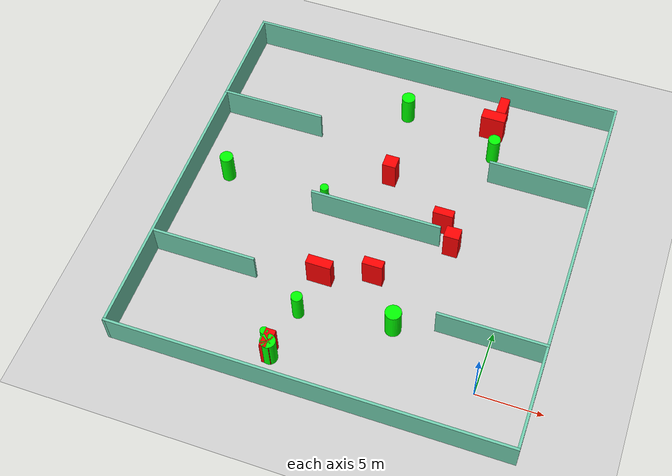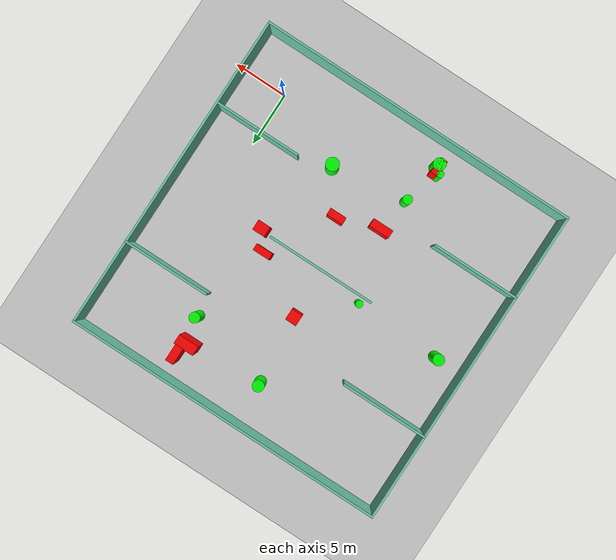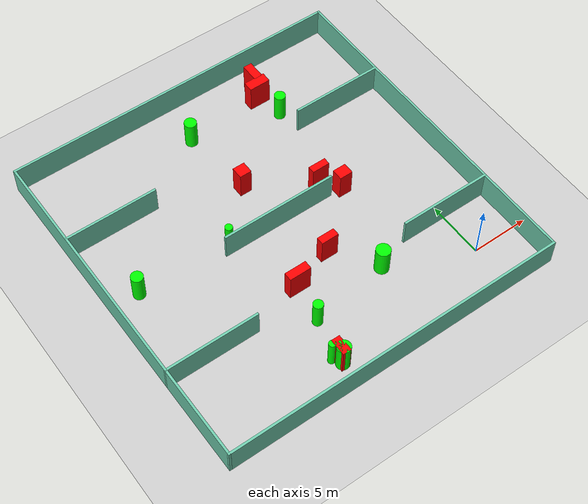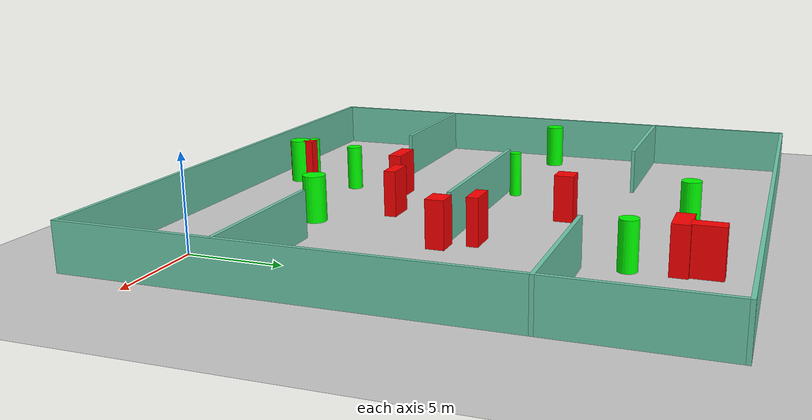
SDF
<sdf version="1.7">
 <world name="default">
  <light name="sun" type="directional">
   <pose>0 0 10 0 -0 0</pose>
   <diffuse>0.8 0.8 0.8 1</diffuse>
   <specular>0.2 0.2 0.2 1</specular>
   <attenuation>
    <range>1000</range>
    <constant>0.9</constant>
    <linear>0.01</linear>
    <quadratic>0.001</quadratic>
   </attenuation>
   <direction>-0.5 0.1 -0.9</direction>
   <spot><inner_angle>0</inner_angle><outer_angle>0</outer_angle><falloff>0</falloff></spot>
  </light>
  <model name="ground_plane">
   <static>1</static>
   <link name="link">
    <collision name="collision">
     <geometry><plane><normal>0 0 1</normal><size>100 100</size></plane></geometry>
     <surface>
      <contact><collide_bitmask>65535</collide_bitmask></contact>
      <friction><ode><mu>100</mu><mu2>50</mu2></ode></friction>
     </surface>
    </collision>
    <visual name="visual">
     <cast_shadows>0</cast_shadows>
     <geometry><plane><normal>0 0 1</normal><size>100 100</size></plane></geometry>
     <material>
      <script><uri>file://media/materials/scripts/gazebo.material</uri><name>Gazebo/Grey</name></script>
     </material>
    </visual>
   </link>
  </model>
  <gravity>0 0 -9.8</gravity>
  <magnetic_field>6e-06 2.3e-05 -4.2e-05</magnetic_field>
  <atmosphere type="adiabatic"/>
  <physics type="ode">
   <max_step_size>0.001</max_step_size>
   <real_time_factor>1</real_time_factor>
   <real_time_update_rate>1000</real_time_update_rate>
  </physics>
  <scene><ambient>0.4 0.4 0.4 1</ambient><background>0.7 0.7 0.7 1</background><shadows>1</shadows></scene>
  <spherical_coordinates>
   <surface_model>EARTH_WGS84</surface_model>
   <latitude_deg>0</latitude_deg>
   <longitude_deg>0</longitude_deg>
   <elevation>0</elevation>
   <heading_deg>0</heading_deg>
  </spherical_coordinates>
  <model name="my_base_walls">
   <link name="Wall_10">
    <collision name="Wall_10_Collision">
     <geometry><box><size>8.2 0.2 2.5</size></box></geometry>
     <pose>0 0 1.25 0 -0 0</pose>
    </collision>
    <visual name="Wall_10_Visual">
     <pose>0 0 1.25 0 -0 0</pose>
     <geometry><box><size>8.2 0.2 2.5</size></box></geometry>
     <material>
      <script><uri>file://media/materials/scripts/gazebo.material</uri><name>Gazebo/Grey</name></script>
      <ambient>0.435294 0.796078 0.67451 1</ambient>
     </material>
     <meta><layer>0</layer></meta>
    </visual>
    <pose>-11 -7 0 0 -0 0</pose>
   </link>
   <link name="Wall_12">
    <collision name="Wall_12_Collision">
     <geometry><box><size>8.2 0.2 2.5</size></box></geometry>
     <pose>0 0 1.25 0 -0 0</pose>
    </collision>
    <visual name="Wall_12_Visual">
     <pose>0 0 1.25 0 -0 0</pose>
     <geometry><box><size>8.2 0.2 2.5</size></box></geometry>
     <material>
      <script><uri>file://media/materials/scripts/gazebo.material</uri><name>Gazebo/Grey</name></script>
      <ambient>0.435294 0.796078 0.67451 1</ambient>
     </material>
     <meta><layer>0</layer></meta>
    </visual>
    <pose>-11 7 0 0 -0 0</pose>
   </link>
   <link name="Wall_14">
    <collision name="Wall_14_Collision">
     <geometry><box><size>8.2 0.2 2.5</size></box></geometry>
     <pose>0 0 1.25 0 -0 0</pose>
    </collision>
    <visual name="Wall_14_Visual">
     <pose>0 0 1.25 0 -0 0</pose>
     <geometry><box><size>8.2 0.2 2.5</size></box></geometry>
     <material>
      <script><uri>file://media/materials/scripts/gazebo.material</uri><name>Gazebo/Grey</name></script>
      <ambient>0.435294 0.796078 0.67451 1</ambient>
     </material>
     <meta><layer>0</layer></meta>
    </visual>
    <pose>11 7 0 0 -0 3.14159</pose>
   </link>
   <link name="Wall_16">
    <collision name="Wall_16_Collision">
     <geometry><box><size>10.2 0.2 2.5</size></box></geometry>
     <pose>0 0 1.25 0 -0 0</pose>
    </collision>
    <visual name="Wall_16_Visual">
     <pose>0 0 1.25 0 -0 0</pose>
     <geometry><box><size>10.2 0.2 2.5</size></box></geometry>
     <material>
      <script><uri>file://media/materials/scripts/gazebo.material</uri><name>Gazebo/Grey</name></script>
      <ambient>0.435294 0.796078 0.67451 1</ambient>
     </material>
     <meta><layer>0</layer></meta>
    </visual>
    <pose>0 0 0 0 -0 3.14159</pose>
   </link>
   <link name="Wall_2">
    <collision name="Wall_2_Collision">
     <geometry><box><size>30.2 0.2 2.5</size></box></geometry>
     <pose>0 0 1.25 0 -0 0</pose>
    </collision>
    <visual name="Wall_2_Visual">
     <pose>0 0 1.25 0 -0 0</pose>
     <geometry><box><size>30.2 0.2 2.5</size></box></geometry>
     <material>
      <script><uri>file://media/materials/scripts/gazebo.material</uri><name>Gazebo/Grey</name></script>
      <ambient>0.435294 0.796078 0.67451 1</ambient>
     </material>
     <meta><layer>0</layer></meta>
    </visual>
    <pose>0 -15 0 0 -0 3.14159</pose>
   </link>
   <link name="Wall_3">
    <collision name="Wall_3_Collision">
     <geometry><box><size>30.2 0.2 2.5</size></box></geometry>
     <pose>0 0 1.25 0 -0 0</pose>
    </collision>
    <visual name="Wall_3_Visual">
     <pose>0 0 1.25 0 -0 0</pose>
     <geometry><box><size>30.2 0.2 2.5</size></box></geometry>
     <material>
      <script><uri>file://media/materials/scripts/gazebo.material</uri><name>Gazebo/Grey</name></script>
      <ambient>0.435294 0.796078 0.67451 1</ambient>
     </material>
     <meta><layer>0</layer></meta>
    </visual>
    <pose>-15 0 0 0 -0 1.5708</pose>
   </link>
   <link name="Wall_4">
    <collision name="Wall_4_Collision">
     <geometry><box><size>30.2 0.2 2.5</size></box></geometry>
     <pose>0 0 1.25 0 -0 0</pose>
    </collision>
    <visual name="Wall_4_Visual">
     <pose>0 0 1.25 0 -0 0</pose>
     <geometry><box><size>30.2 0.2 2.5</size></box></geometry>
     <material>
      <script><uri>file://media/materials/scripts/gazebo.material</uri><name>Gazebo/Grey</name></script>
      <ambient>0.435294 0.796078 0.67451 1</ambient>
     </material>
     <meta><layer>0</layer></meta>
    </visual>
    <pose>0 15 0 0 -0 0</pose>
   </link>
   <link name="Wall_6">
    <collision name="Wall_6_Collision">
     <geometry><box><size>30.2 0.2 2.5</size></box></geometry>
     <pose>0 0 1.25 0 -0 0</pose>
    </collision>
    <visual name="Wall_6_Visual">
     <pose>0 0 1.25 0 -0 0</pose>
     <geometry><box><size>30.2 0.2 2.5</size></box></geometry>
     <material>
      <script><uri>file://media/materials/scripts/gazebo.material</uri><name>Gazebo/Grey</name></script>
      <ambient>0.435294 0.796078 0.67451 1</ambient>
     </material>
     <meta><layer>0</layer></meta>
    </visual>
    <pose>15 0 0 0 -0 1.5708</pose>
   </link>
   <link name="Wall_8">
    <collision name="Wall_8_Collision">
     <geometry><box><size>8.2 0.2 2.5</size></box></geometry>
     <pose>0 0 1.25 0 -0 0</pose>
    </collision>
    <visual name="Wall_8_Visual">
     <pose>0 0 1.25 0 -0 0</pose>
     <geometry><box><size>8.2 0.2 2.5</size></box></geometry>
     <material>
      <script><uri>file://media/materials/scripts/gazebo.material</uri><name>Gazebo/Grey</name></script>
      <ambient>0.435294 0.796078 0.67451 1</ambient>
     </material>
     <meta><layer>0</layer></meta>
    </visual>
    <pose>11 -7 0 0 -0 3.14159</pose>
   </link>
   <static>1</static>
   <pose>-11 11 0 0 -0 0</pose>
  </model>
  <model name="cylinder1">
   <static>1</static>
   <link name="link">
    <inertial>
     <mass>1</mass>
     <inertia><ixx>0.5</ixx><ixy>0</ixy><ixz>0</ixz><iyy>0.5</iyy><iyz>0</iyz><izz>1</izz></inertia>
    </inertial>
    <collision name="collision">
     <geometry><cylinder><radius>0.4847277459108309</radius><length>2.5</length></cylinder></geometry>
    </collision>
    <visual name="visual">
     <geometry><cylinder><radius>0.4847277459108309</radius><length>2.5</length></cylinder></geometry>
     <material>
      <ambient>0 1 0 1</ambient>
      <diffuse>0 1 0 1</diffuse>
      <specular>0.1 0.1 0.1 1</specular>
      <emissive>0 0 0 0</emissive>
     </material>
    </visual>
   </link>
   <pose>-4.331411780628558 20.173821506922977 1.25 0 0 0</pose>
  </model>
  <model name="cylinder2">
   <static>1</static>
   <link name="link">
    <inertial>
     <mass>1</mass>
     <inertia><ixx>0.5</ixx><ixy>0</ixy><ixz>0</ixz><iyy>0.5</iyy><iyz>0</iyz><izz>1</izz></inertia>
    </inertial>
    <collision name="collision">
     <geometry><cylinder><radius>0.32390530191250877</radius><length>2.5</length></cylinder></geometry>
    </collision>
    <visual name="visual">
     <geometry><cylinder><radius>0.32390530191250877</radius><length>2.5</length></cylinder></geometry>
     <material>
      <ambient>0 1 0 1</ambient>
      <diffuse>0 1 0 1</diffuse>
      <specular>0.1 0.1 0.1 1</specular>
      <emissive>0 0 0 0</emissive>
     </material>
    </visual>
   </link>
   <pose>-15.30426690717897 11.638413046907974 1.25 0 0 0</pose>
  </model>
  <model name="cylinder3">
   <static>1</static>
   <link name="link">
    <inertial>
     <mass>1</mass>
     <inertia><ixx>0.5</ixx><ixy>0</ixy><ixz>0</ixz><iyy>0.5</iyy><iyz>0</iyz><izz>1</izz></inertia>
    </inertial>
    <collision name="collision">
     <geometry><cylinder><radius>0.30104302596826493</radius><length>2.5</length></cylinder></geometry>
    </collision>
    <visual name="visual">
     <geometry><cylinder><radius>0.30104302596826493</radius><length>2.5</length></cylinder></geometry>
     <material>
      <ambient>0 1 0 1</ambient>
      <diffuse>0 1 0 1</diffuse>
      <specular>0.1 0.1 0.1 1</specular>
      <emissive>0 0 0 0</emissive>
     </material>
    </visual>
   </link>
   <pose>-15.037210310168463 -1.2083504507588487 1.25 0 0 0</pose>
  </model>
  <model name="cylinder4">
   <static>1</static>
   <link name="link">
    <inertial>
     <mass>1</mass>
     <inertia><ixx>0.5</ixx><ixy>0</ixy><ixz>0</ixz><iyy>0.5</iyy><iyz>0</iyz><izz>1</izz></inertia>
    </inertial>
    <collision name="collision">
     <geometry><cylinder><radius>0.5700694069111603</radius><length>2.5</length></cylinder></geometry>
    </collision>
    <visual name="visual">
     <geometry><cylinder><radius>0.5700694069111603</radius><length>2.5</length></cylinder></geometry>
     <material>
      <ambient>0 1 0 1</ambient>
      <diffuse>0 1 0 1</diffuse>
      <specular>0.1 0.1 0.1 1</specular>
      <emissive>0 0 0 0</emissive>
     </material>
    </visual>
   </link>
   <pose>-14.502358563790898 -1.892992463608207 1.25 0 0 0</pose>
  </model>
  <model name="cylinder5">
   <static>1</static>
   <link name="link">
    <inertial>
     <mass>1</mass>
     <inertia><ixx>0.5</ixx><ixy>0</ixy><ixz>0</ixz><iyy>0.5</iyy><iyz>0</iyz><izz>1</izz></inertia>
    </inertial>
    <collision name="collision">
     <geometry><cylinder><radius>0.42501622155040325</radius><length>2.5</length></cylinder></geometry>
    </collision>
    <visual name="visual">
     <geometry><cylinder><radius>0.42501622155040325</radius><length>2.5</length></cylinder></geometry>
     <material>
      <ambient>0 1 0 1</ambient>
      <diffuse>0 1 0 1</diffuse>
      <specular>0.1 0.1 0.1 1</specular>
      <emissive>0 0 0 0</emissive>
     </material>
    </visual>
   </link>
   <pose>-13.871614178625276 2.0668477201684876 1.25 0 0 0</pose>
  </model>
  <model name="cylinder6">
   <static>1</static>
   <link name="link">
    <inertial>
     <mass>1</mass>
     <inertia><ixx>0.5</ixx><ixy>0</ixy><ixz>0</ixz><iyy>0.5</iyy><iyz>0</iyz><izz>1</izz></inertia>
    </inertial>
    <collision name="collision">
     <geometry><cylinder><radius>0.5140954645896257</radius><length>2.5</length></cylinder></geometry>
    </collision>
    <visual name="visual">
     <geometry><cylinder><radius>0.5140954645896257</radius><length>2.5</length></cylinder></geometry>
     <material>
      <ambient>0 1 0 1</ambient>
      <diffuse>0 1 0 1</diffuse>
      <specular>0.1 0.1 0.1 1</specular>
      <emissive>0 0 0 0</emissive>
     </material>
    </visual>
   </link>
   <pose>-23.442768367316297 11.922244997637554 1.25 0 0 0</pose>
  </model>
  <model name="cylinder7">
   <static>1</static>
   <link name="link">
    <inertial>
     <mass>1</mass>
     <inertia><ixx>0.5</ixx><ixy>0</ixy><ixz>0</ixz><iyy>0.5</iyy><iyz>0</iyz><izz>1</izz></inertia>
    </inertial>
    <collision name="collision">
     <geometry><cylinder><radius>0.5312974507745607</radius><length>2.5</length></cylinder></geometry>
    </collision>
    <visual name="visual">
     <geometry><cylinder><radius>0.5312974507745607</radius><length>2.5</length></cylinder></geometry>
     <material>
      <ambient>0 1 0 1</ambient>
      <diffuse>0 1 0 1</diffuse>
      <specular>0.1 0.1 0.1 1</specular>
      <emissive>0 0 0 0</emissive>
     </material>
    </visual>
   </link>
   <pose>-11.959245302337905 22.046292670895 1.25 0 0 0</pose>
  </model>
  <model name="cylinder8">
   <static>1</static>
   <link name="link">
    <inertial>
     <mass>1</mass>
     <inertia><ixx>0.5</ixx><ixy>0</ixy><ixz>0</ixz><iyy>0.5</iyy><iyz>0</iyz><izz>1</izz></inertia>
    </inertial>
    <collision name="collision">
     <geometry><cylinder><radius>0.6099942609213687</radius><length>2.5</length></cylinder></geometry>
    </collision>
    <visual name="visual">
     <geometry><cylinder><radius>0.6099942609213687</radius><length>2.5</length></cylinder></geometry>
     <material>
      <ambient>0 1 0 1</ambient>
      <diffuse>0 1 0 1</diffuse>
      <specular>0.1 0.1 0.1 1</specular>
      <emissive>0 0 0 0</emissive>
     </material>
    </visual>
   </link>
   <pose>-6.963836038363432 3.052237342799124 1.25 0 0 0</pose>
  </model>
  <model name="box1">
   <static>1</static>
   <link name="link">
    <inertial>
     <mass>1</mass>
     <inertia><ixx>0.083</ixx><ixy>0</ixy><ixz>0</ixz><iyy>0.083</iyy><iyz>0</iyz><izz>0.083</izz></inertia>
    </inertial>
    <collision name="collision">
     <geometry><box><size>0.7622918954735778 1.6101396009052444 2.5</size></box></geometry>
    </collision>
    <visual name="visual">
     <geometry><box><size>0.7622918954735778 1.6101396009052444 2.5</size></box></geometry>
     <material>
      <ambient>1 0 0 1</ambient>
      <diffuse>1 0 0 1</diffuse>
      <specular>0.1 0.1 0.1 1</specular>
      <emissive>0 0 0 0</emissive>
     </material>
    </visual>
    <sensor name="my_contact" type="contact">
     <contact><collision>box_collision</collision><topic>__default_topic__</topic></contact>
    </sensor>
   </link>
   <pose>-4.602399265646492 23.675293353482633 1.25 0 0 0</pose>
  </model>
  <model name="box2">
   <static>1</static>
   <link name="link">
    <inertial>
     <mass>1</mass>
     <inertia><ixx>0.083</ixx><ixy>0</ixy><ixz>0</ixz><iyy>0.083</iyy><iyz>0</iyz><izz>0.083</izz></inertia>
    </inertial>
    <collision name="collision">
     <geometry><box><size>1.8933609867213412 0.8905338328763132 2.5</size></box></geometry>
    </collision>
    <visual name="visual">
     <geometry><box><size>1.8933609867213412 0.8905338328763132 2.5</size></box></geometry>
     <material>
      <ambient>1 0 0 1</ambient>
      <diffuse>1 0 0 1</diffuse>
      <specular>0.1 0.1 0.1 1</specular>
      <emissive>0 0 0 0</emissive>
     </material>
    </visual>
    <sensor name="my_contact" type="contact">
     <contact><collision>box_collision</collision><topic>__default_topic__</topic></contact>
    </sensor>
   </link>
   <pose>-5.001440575143523 22.49297213608253 1.25 0 0 0</pose>
  </model>
  <model name="box3">
   <static>1</static>
   <link name="link">
    <inertial>
     <mass>1</mass>
     <inertia><ixx>0.083</ixx><ixy>0</ixy><ixz>0</ixz><iyy>0.083</iyy><iyz>0</iyz><izz>0.083</izz></inertia>
    </inertial>
    <collision name="collision">
     <geometry><box><size>1.919604643374014 0.7401681322813647 2.5</size></box></geometry>
    </collision>
    <visual name="visual">
     <geometry><box><size>1.919604643374014 0.7401681322813647 2.5</size></box></geometry>
     <material>
      <ambient>1 0 0 1</ambient>
      <diffuse>1 0 0 1</diffuse>
      <specular>0.1 0.1 0.1 1</specular>
      <emissive>0 0 0 0</emissive>
     </material>
    </visual>
    <sensor name="my_contact" type="contact">
     <contact><collision>box_collision</collision><topic>__default_topic__</topic></contact>
    </sensor>
   </link>
   <pose>-13.349533122919302 5.311582661791872 1.25 0 0 0</pose>
  </model>
  <model name="box4">
   <static>1</static>
   <link name="link">
    <inertial>
     <mass>1</mass>
     <inertia><ixx>0.083</ixx><ixy>0</ixy><ixz>0</ixz><iyy>0.083</iyy><iyz>0</iyz><izz>0.083</izz></inertia>
    </inertial>
    <collision name="collision">
     <geometry><box><size>1.5562894231047724 0.6164918766690268 2.5</size></box></geometry>
    </collision>
    <visual name="visual">
     <geometry><box><size>1.5562894231047724 0.6164918766690268 2.5</size></box></geometry>
     <material>
      <ambient>1 0 0 1</ambient>
      <diffuse>1 0 0 1</diffuse>
      <specular>0.1 0.1 0.1 1</specular>
      <emissive>0 0 0 0</emissive>
     </material>
    </visual>
    <sensor name="my_contact" type="contact">
     <contact><collision>box_collision</collision><topic>__default_topic__</topic></contact>
    </sensor>
   </link>
   <pose>-6.086373567297045 12.406460622845378 1.25 0 0 0</pose>
  </model>
  <model name="box5">
   <static>1</static>
   <link name="link">
    <inertial>
     <mass>1</mass>
     <inertia><ixx>0.083</ixx><ixy>0</ixy><ixz>0</ixz><iyy>0.083</iyy><iyz>0</iyz><izz>0.083</izz></inertia>
    </inertial>
    <collision name="collision">
     <geometry><box><size>1.0621426838883932 1.03889358543899 2.5</size></box></geometry>
    </collision>
    <visual name="visual">
     <geometry><box><size>1.0621426838883932 1.03889358543899 2.5</size></box></geometry>
     <material>
      <ambient>1 0 0 1</ambient>
      <diffuse>1 0 0 1</diffuse>
      <specular>0.1 0.1 0.1 1</specular>
      <emissive>0 0 0 0</emissive>
     </material>
    </visual>
    <sensor name="my_contact" type="contact">
     <contact><collision>box_collision</collision><topic>__default_topic__</topic></contact>
    </sensor>
   </link>
   <pose>-11.313188455768243 15.589887852109758 1.25 0 0 0</pose>
  </model>
  <model name="box6">
   <static>1</static>
   <link name="link">
    <inertial>
     <mass>1</mass>
     <inertia><ixx>0.083</ixx><ixy>0</ixy><ixz>0</ixz><iyy>0.083</iyy><iyz>0</iyz><izz>0.083</izz></inertia>
    </inertial>
    <collision name="collision">
     <geometry><box><size>1.1658100020109956 0.9729984495073561 2.5</size></box></geometry>
    </collision>
    <visual name="visual">
     <geometry><box><size>1.1658100020109956 0.9729984495073561 2.5</size></box></geometry>
     <material>
      <ambient>1 0 0 1</ambient>
      <diffuse>1 0 0 1</diffuse>
      <specular>0.1 0.1 0.1 1</specular>
      <emissive>0 0 0 0</emissive>
     </material>
    </visual>
    <sensor name="my_contact" type="contact">
     <contact><collision>box_collision</collision><topic>__default_topic__</topic></contact>
    </sensor>
   </link>
   <pose>-4.918170581654355 10.821089950257978 1.25 0 0 0</pose>
  </model>
  <model name="box7">
   <static>1</static>
   <link name="link">
    <inertial>
     <mass>1</mass>
     <inertia><ixx>0.083</ixx><ixy>0</ixy><ixz>0</ixz><iyy>0.083</iyy><iyz>0</iyz><izz>0.083</izz></inertia>
    </inertial>
    <collision name="collision">
     <geometry><box><size>0.7429762374671267 1.4558533627227912 2.5</size></box></geometry>
    </collision>
    <visual name="visual">
     <geometry><box><size>0.7429762374671267 1.4558533627227912 2.5</size></box></geometry>
     <material>
      <ambient>1 0 0 1</ambient>
      <diffuse>1 0 0 1</diffuse>
      <specular>0.1 0.1 0.1 1</specular>
      <emissive>0 0 0 0</emissive>
     </material>
    </visual>
    <sensor name="my_contact" type="contact">
     <contact><collision>box_collision</collision><topic>__default_topic__</topic></contact>
    </sensor>
   </link>
   <pose>-14.591983366423115 -1.6789271774173402 1.25 0 0 0</pose>
  </model>
  <model name="box8">
   <static>1</static>
   <link name="link">
    <inertial>
     <mass>1</mass>
     <inertia><ixx>0.083</ixx><ixy>0</ixy><ixz>0</ixz><iyy>0.083</iyy><iyz>0</iyz><izz>0.083</izz></inertia>
    </inertial>
    <collision name="collision">
     <geometry><box><size>1.5498688528870888 0.6604500098900294 2.5</size></box></geometry>
    </collision>
    <visual name="visual">
     <geometry><box><size>1.5498688528870888 0.6604500098900294 2.5</size></box></geometry>
     <material>
      <ambient>1 0 0 1</ambient>
      <diffuse>1 0 0 1</diffuse>
      <specular>0.1 0.1 0.1 1</specular>
      <emissive>0 0 0 0</emissive>
     </material>
    </visual>
    <sensor name="my_contact" type="contact">
     <contact><collision>box_collision</collision><topic>__default_topic__</topic></contact>
    </sensor>
   </link>
   <pose>-9.635616590298358 6.518925405592453 1.25 0 0 0</pose>
  </model>
 </world>
</sdf>
